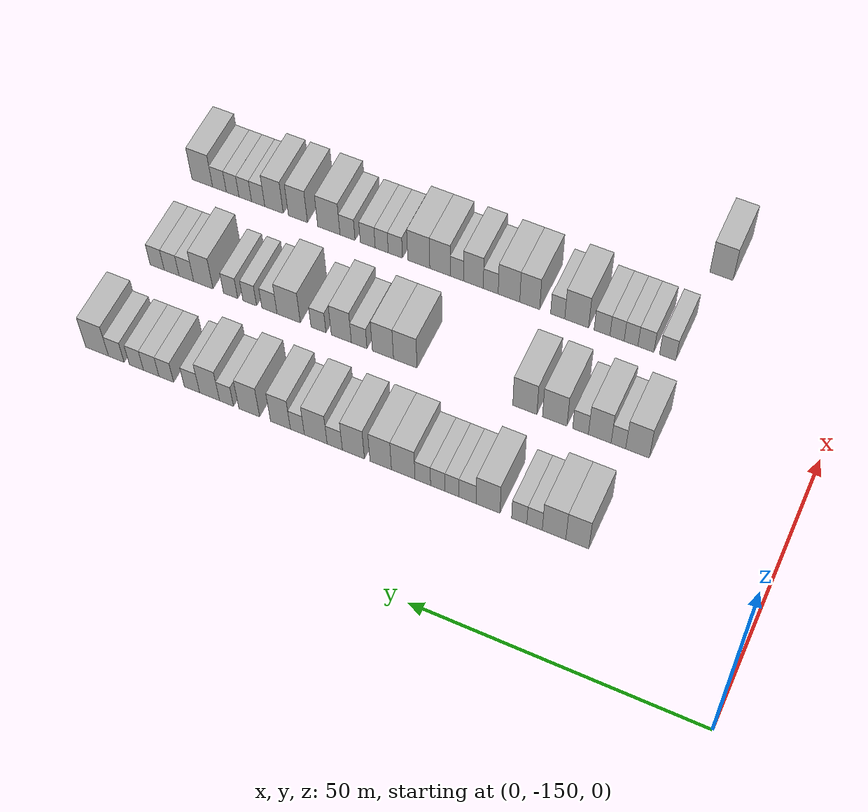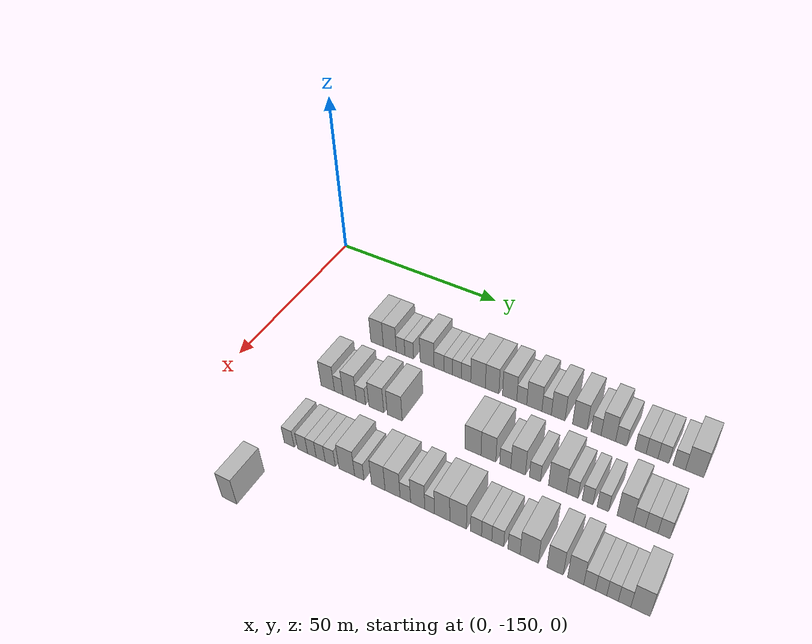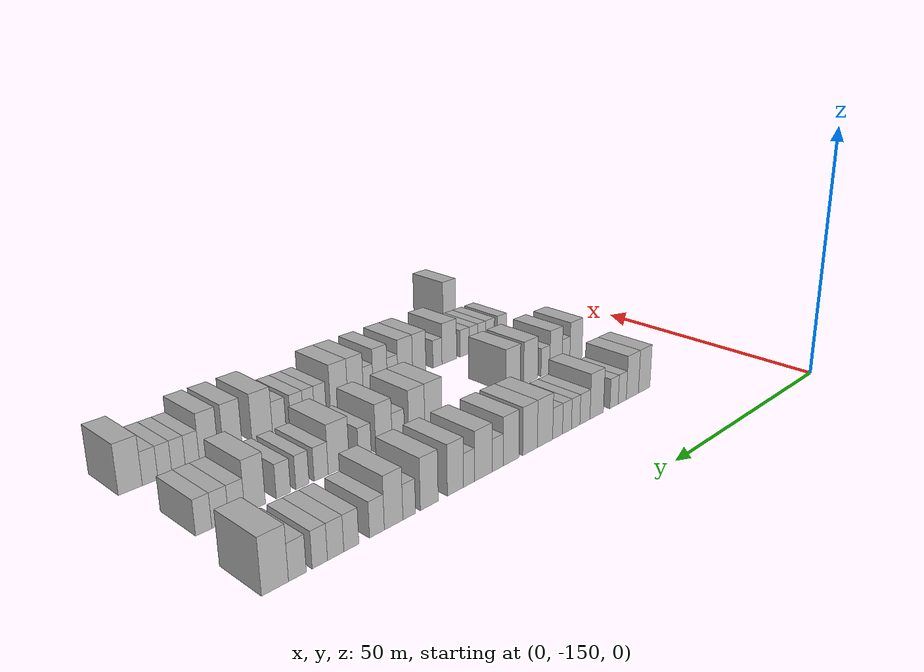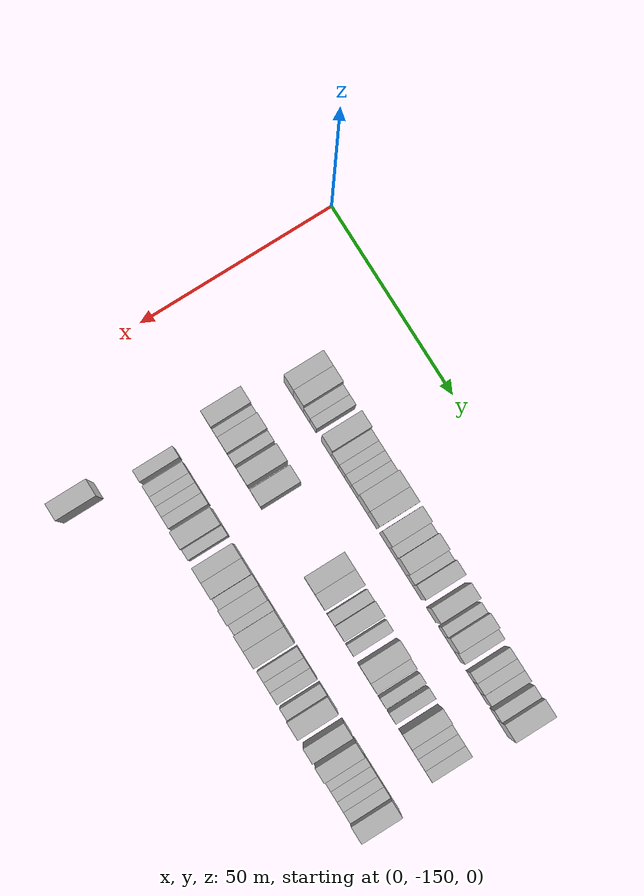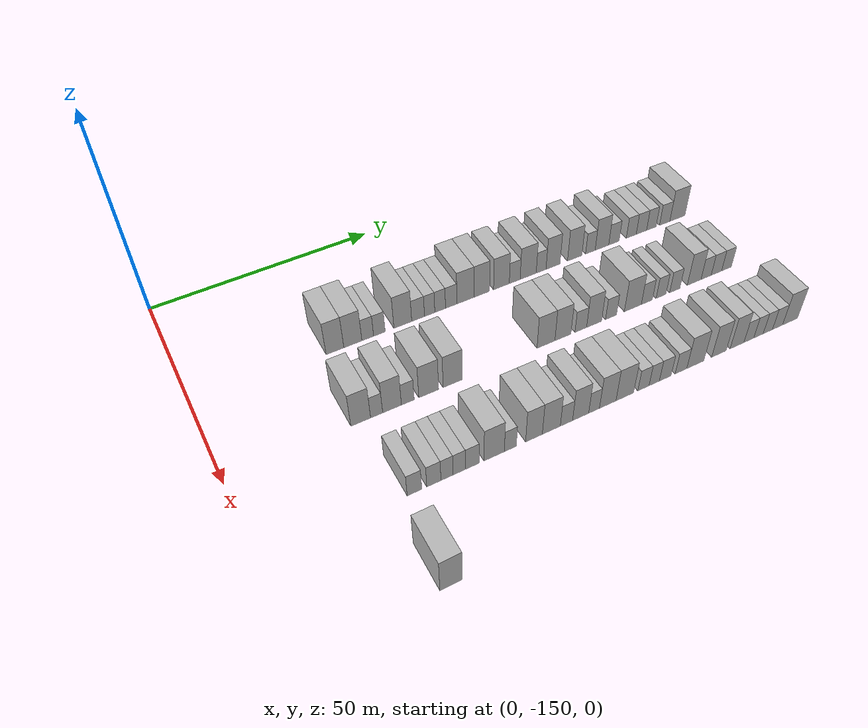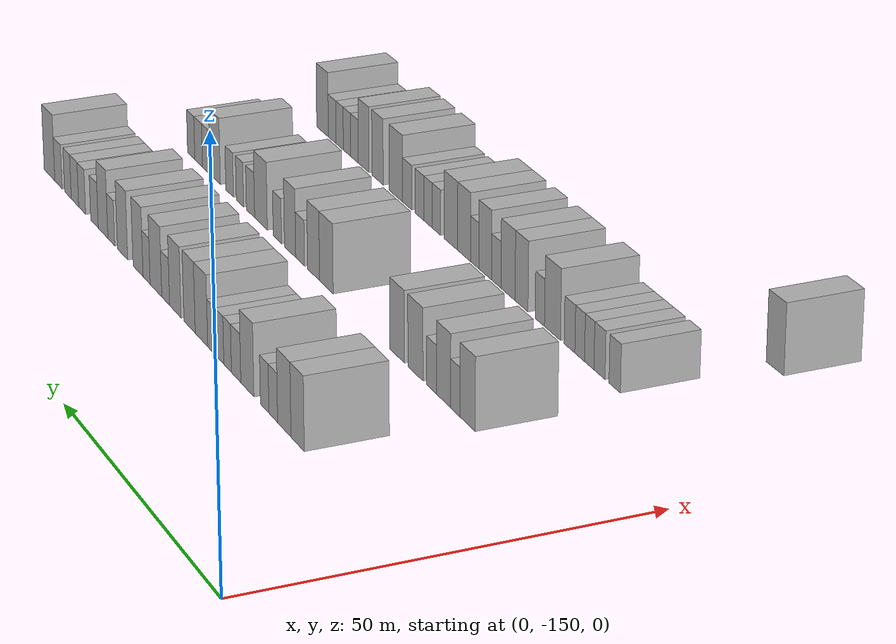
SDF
<sdf version="1.6">
 <world name="default">
  <model name="building_59">
   <static>1</static>
   <pose>25.0000 -119.9906 0 0.000000 0.000000 0.000000</pose>
   <link name="link">
    <pose>0 0 4.50 0 0 0</pose>
    <collision name="collision"><geometry><box><size>10.0000 3.9151 9.0000</size></box></geometry></collision>
    <visual name="visual">
     <cast_shadows>0</cast_shadows>
     <geometry><box><size>10.0000 3.9151 9.0000</size></box></geometry>
     <material>
      <script>
       <uri>model://HANNAS_wall/materials/scripts</uri>
       <uri>model://HANNAS_wall/materials/textures</uri>
       <name>vrc/HANNAS_wall</name>
      </script>
     </material>
    </visual>
   </link>
  </model>
  <model name="building_60">
   <static>1</static>
   <pose>25.0000 -116.0222 0 0.000000 0.000000 0.000000</pose>
   <link name="link">
    <pose>0 0 4.50 0 0 0</pose>
    <collision name="collision"><geometry><box><size>10.0000 4.0216 9.0000</size></box></geometry></collision>
    <visual name="visual">
     <cast_shadows>0</cast_shadows>
     <geometry><box><size>10.0000 4.0216 9.0000</size></box></geometry>
     <material>
      <script>
       <uri>model://HANNAS_wall/materials/scripts</uri>
       <uri>model://HANNAS_wall/materials/textures</uri>
       <name>vrc/HANNAS_wall</name>
      </script>
     </material>
    </visual>
   </link>
  </model>
  <model name="building_61">
   <static>1</static>
   <pose>25.0000 -112.6901 0 0.000000 0.000000 0.000000</pose>
   <link name="link">
    <pose>0 0 3.00 0 0 0</pose>
    <collision name="collision"><geometry><box><size>10.0000 2.6426 6.0000</size></box></geometry></collision>
    <visual name="visual">
     <cast_shadows>0</cast_shadows>
     <geometry><box><size>10.0000 2.6426 6.0000</size></box></geometry>
     <material>
      <script>
       <uri>model://HANNAS_wall/materials/scripts</uri>
       <uri>model://HANNAS_wall/materials/textures</uri>
       <name>vrc/HANNAS_wall</name>
      </script>
     </material>
    </visual>
   </link>
  </model>
  <model name="building_62">
   <static>1</static>
   <pose>25.0000 -110.0541 0 0.000000 0.000000 0.000000</pose>
   <link name="link">
    <pose>0 0 3.00 0 0 0</pose>
    <collision name="collision"><geometry><box><size>10.0000 2.6295 6.0000</size></box></geometry></collision>
    <visual name="visual">
     <cast_shadows>0</cast_shadows>
     <geometry><box><size>10.0000 2.6295 6.0000</size></box></geometry>
     <material>
      <script>
       <uri>model://HANNAS_wall/materials/scripts</uri>
       <uri>model://HANNAS_wall/materials/textures</uri>
       <name>vrc/HANNAS_wall</name>
      </script>
     </material>
    </visual>
   </link>
  </model>
  <model name="building_63">
   <static>1</static>
   <pose>25.0000 -104.6762 0 0.000000 0.000000 0.000000</pose>
   <link name="link">
    <pose>0 0 4.50 0 0 0</pose>
    <collision name="collision"><geometry><box><size>10.0000 4.1262 9.0000</size></box></geometry></collision>
    <visual name="visual">
     <cast_shadows>0</cast_shadows>
     <geometry><box><size>10.0000 4.1262 9.0000</size></box></geometry>
     <material>
      <script>
       <uri>model://HANNAS_wall/materials/scripts</uri>
       <uri>model://HANNAS_wall/materials/textures</uri>
       <name>vrc/HANNAS_wall</name>
      </script>
     </material>
    </visual>
   </link>
  </model>
  <model name="building_64">
   <static>1</static>
   <pose>25.0000 -101.1156 0 0.000000 0.000000 0.000000</pose>
   <link name="link">
    <pose>0 0 3.00 0 0 0</pose>
    <collision name="collision"><geometry><box><size>10.0000 2.9951 6.0000</size></box></geometry></collision>
    <visual name="visual">
     <cast_shadows>0</cast_shadows>
     <geometry><box><size>10.0000 2.9951 6.0000</size></box></geometry>
     <material>
      <script>
       <uri>model://HANNAS_wall/materials/scripts</uri>
       <uri>model://HANNAS_wall/materials/textures</uri>
       <name>vrc/HANNAS_wall</name>
      </script>
     </material>
    </visual>
   </link>
  </model>
  <model name="building_65">
   <static>1</static>
   <pose>25.0000 -98.3955 0 0.000000 0.000000 0.000000</pose>
   <link name="link">
    <pose>0 0 3.00 0 0 0</pose>
    <collision name="collision"><geometry><box><size>10.0000 2.4451 6.0000</size></box></geometry></collision>
    <visual name="visual">
     <cast_shadows>0</cast_shadows>
     <geometry><box><size>10.0000 2.4451 6.0000</size></box></geometry>
     <material>
      <script>
       <uri>model://HANNAS_wall/materials/scripts</uri>
       <uri>model://HANNAS_wall/materials/textures</uri>
       <name>vrc/HANNAS_wall</name>
      </script>
     </material>
    </visual>
   </link>
  </model>
  <model name="building_66">
   <static>1</static>
   <pose>25.0000 -95.9010 0 0.000000 0.000000 0.000000</pose>
   <link name="link">
    <pose>0 0 3.00 0 0 0</pose>
    <collision name="collision"><geometry><box><size>10.0000 2.5439 6.0000</size></box></geometry></collision>
    <visual name="visual">
     <cast_shadows>0</cast_shadows>
     <geometry><box><size>10.0000 2.5439 6.0000</size></box></geometry>
     <material>
      <script>
       <uri>model://HANNAS_wall/materials/scripts</uri>
       <uri>model://HANNAS_wall/materials/textures</uri>
       <name>vrc/HANNAS_wall</name>
      </script>
     </material>
    </visual>
   </link>
  </model>
  <model name="building_67">
   <static>1</static>
   <pose>25.0000 -93.2577 0 0.000000 0.000000 0.000000</pose>
   <link name="link">
    <pose>0 0 3.00 0 0 0</pose>
    <collision name="collision"><geometry><box><size>10.0000 2.7427 6.0000</size></box></geometry></collision>
    <visual name="visual">
     <cast_shadows>0</cast_shadows>
     <geometry><box><size>10.0000 2.7427 6.0000</size></box></geometry>
     <material>
      <script>
       <uri>model://HANNAS_wall/materials/scripts</uri>
       <uri>model://HANNAS_wall/materials/textures</uri>
       <name>vrc/HANNAS_wall</name>
      </script>
     </material>
    </visual>
   </link>
  </model>
  <model name="building_68">
   <static>1</static>
   <pose>25.0000 -89.7985 0 0.000000 0.000000 0.000000</pose>
   <link name="link">
    <pose>0 0 4.50 0 0 0</pose>
    <collision name="collision"><geometry><box><size>10.0000 4.1758 9.0000</size></box></geometry></collision>
    <visual name="visual">
     <cast_shadows>0</cast_shadows>
     <geometry><box><size>10.0000 4.1758 9.0000</size></box></geometry>
     <material>
      <script>
       <uri>model://HANNAS_wall/materials/scripts</uri>
       <uri>model://HANNAS_wall/materials/textures</uri>
       <name>vrc/HANNAS_wall</name>
      </script>
     </material>
    </visual>
   </link>
  </model>
  <model name="building_69">
   <static>1</static>
   <pose>25.0000 -85.8017 0 0.000000 0.000000 0.000000</pose>
   <link name="link">
    <pose>0 0 4.50 0 0 0</pose>
    <collision name="collision"><geometry><box><size>10.0000 3.8178 9.0000</size></box></geometry></collision>
    <visual name="visual">
     <cast_shadows>0</cast_shadows>
     <geometry><box><size>10.0000 3.8178 9.0000</size></box></geometry>
     <material>
      <script>
       <uri>model://HANNAS_wall/materials/scripts</uri>
       <uri>model://HANNAS_wall/materials/textures</uri>
       <name>vrc/HANNAS_wall</name>
      </script>
     </material>
    </visual>
   </link>
  </model>
  <model name="building_70">
   <static>1</static>
   <pose>25.0000 -80.9152 0 0.000000 0.000000 0.000000</pose>
   <link name="link">
    <pose>0 0 4.50 0 0 0</pose>
    <collision name="collision"><geometry><box><size>10.0000 3.9553 9.0000</size></box></geometry></collision>
    <visual name="visual">
     <cast_shadows>0</cast_shadows>
     <geometry><box><size>10.0000 3.9553 9.0000</size></box></geometry>
     <material>
      <script>
       <uri>model://HANNAS_wall/materials/scripts</uri>
       <uri>model://HANNAS_wall/materials/textures</uri>
       <name>vrc/HANNAS_wall</name>
      </script>
     </material>
    </visual>
   </link>
  </model>
  <model name="building_71">
   <static>1</static>
   <pose>25.0000 -77.5661 0 0.000000 0.000000 0.000000</pose>
   <link name="link">
    <pose>0 0 3.00 0 0 0</pose>
    <collision name="collision"><geometry><box><size>10.0000 2.7429 6.0000</size></box></geometry></collision>
    <visual name="visual">
     <cast_shadows>0</cast_shadows>
     <geometry><box><size>10.0000 2.7429 6.0000</size></box></geometry>
     <material>
      <script>
       <uri>model://HANNAS_wall/materials/scripts</uri>
       <uri>model://HANNAS_wall/materials/textures</uri>
       <name>vrc/HANNAS_wall</name>
      </script>
     </material>
    </visual>
   </link>
  </model>
  <model name="building_72">
   <static>1</static>
   <pose>25.0000 -74.1338 0 0.000000 0.000000 0.000000</pose>
   <link name="link">
    <pose>0 0 4.50 0 0 0</pose>
    <collision name="collision"><geometry><box><size>10.0000 4.1218 9.0000</size></box></geometry></collision>
    <visual name="visual">
     <cast_shadows>0</cast_shadows>
     <geometry><box><size>10.0000 4.1218 9.0000</size></box></geometry>
     <material>
      <script>
       <uri>model://HANNAS_wall/materials/scripts</uri>
       <uri>model://HANNAS_wall/materials/textures</uri>
       <name>vrc/HANNAS_wall</name>
      </script>
     </material>
    </visual>
   </link>
  </model>
  <model name="building_73">
   <static>1</static>
   <pose>25.0000 -70.8016 0 0.000000 0.000000 0.000000</pose>
   <link name="link">
    <pose>0 0 3.00 0 0 0</pose>
    <collision name="collision"><geometry><box><size>10.0000 2.5425 6.0000</size></box></geometry></collision>
    <visual name="visual">
     <cast_shadows>0</cast_shadows>
     <geometry><box><size>10.0000 2.5425 6.0000</size></box></geometry>
     <material>
      <script>
       <uri>model://HANNAS_wall/materials/scripts</uri>
       <uri>model://HANNAS_wall/materials/textures</uri>
       <name>vrc/HANNAS_wall</name>
      </script>
     </material>
    </visual>
   </link>
  </model>
  <model name="building_74">
   <static>1</static>
   <pose>25.0000 -67.7146 0 0.000000 0.000000 0.000000</pose>
   <link name="link">
    <pose>0 0 4.50 0 0 0</pose>
    <collision name="collision"><geometry><box><size>10.0000 3.6316 9.0000</size></box></geometry></collision>
    <visual name="visual">
     <cast_shadows>0</cast_shadows>
     <geometry><box><size>10.0000 3.6316 9.0000</size></box></geometry>
     <material>
      <script>
       <uri>model://HANNAS_wall/materials/scripts</uri>
       <uri>model://HANNAS_wall/materials/textures</uri>
       <name>vrc/HANNAS_wall</name>
      </script>
     </material>
    </visual>
   </link>
  </model>
  <model name="building_75">
   <static>1</static>
   <pose>25.0000 -61.9915 0 0.000000 0.000000 0.000000</pose>
   <link name="link">
    <pose>0 0 4.50 0 0 0</pose>
    <collision name="collision"><geometry><box><size>10.0000 3.8147 9.0000</size></box></geometry></collision>
    <visual name="visual">
     <cast_shadows>0</cast_shadows>
     <geometry><box><size>10.0000 3.8147 9.0000</size></box></geometry>
     <material>
      <script>
       <uri>model://HANNAS_wall/materials/scripts</uri>
       <uri>model://HANNAS_wall/materials/textures</uri>
       <name>vrc/HANNAS_wall</name>
      </script>
     </material>
    </visual>
   </link>
  </model>
  <model name="building_76">
   <static>1</static>
   <pose>25.0000 -57.7889 0 0.000000 0.000000 0.000000</pose>
   <link name="link">
    <pose>0 0 3.00 0 0 0</pose>
    <collision name="collision"><geometry><box><size>10.0000 2.5904 6.0000</size></box></geometry></collision>
    <visual name="visual">
     <cast_shadows>0</cast_shadows>
     <geometry><box><size>10.0000 2.5904 6.0000</size></box></geometry>
     <material>
      <script>
       <uri>model://HANNAS_wall/materials/scripts</uri>
       <uri>model://HANNAS_wall/materials/textures</uri>
       <name>vrc/HANNAS_wall</name>
      </script>
     </material>
    </visual>
   </link>
  </model>
  <model name="building_77">
   <static>1</static>
   <pose>25.0000 -54.6453 0 0.000000 0.000000 0.000000</pose>
   <link name="link">
    <pose>0 0 4.50 0 0 0</pose>
    <collision name="collision"><geometry><box><size>10.0000 3.6968 9.0000</size></box></geometry></collision>
    <visual name="visual">
     <cast_shadows>0</cast_shadows>
     <geometry><box><size>10.0000 3.6968 9.0000</size></box></geometry>
     <material>
      <script>
       <uri>model://HANNAS_wall/materials/scripts</uri>
       <uri>model://HANNAS_wall/materials/textures</uri>
       <name>vrc/HANNAS_wall</name>
      </script>
     </material>
    </visual>
   </link>
  </model>
  <model name="building_78">
   <static>1</static>
   <pose>25.0000 -51.3597 0 0.000000 0.000000 0.000000</pose>
   <link name="link">
    <pose>0 0 3.00 0 0 0</pose>
    <collision name="collision"><geometry><box><size>10.0000 2.8746 6.0000</size></box></geometry></collision>
    <visual name="visual">
     <cast_shadows>0</cast_shadows>
     <geometry><box><size>10.0000 2.8746 6.0000</size></box></geometry>
     <material>
      <script>
       <uri>model://HANNAS_wall/materials/scripts</uri>
       <uri>model://HANNAS_wall/materials/textures</uri>
       <name>vrc/HANNAS_wall</name>
      </script>
     </material>
    </visual>
   </link>
  </model>
  <model name="building_79">
   <static>1</static>
   <pose>25.0000 -46.5425 0 0.000000 0.000000 0.000000</pose>
   <link name="link">
    <pose>0 0 3.00 0 0 0</pose>
    <collision name="collision"><geometry><box><size>10.0000 2.7597 6.0000</size></box></geometry></collision>
    <visual name="visual">
     <cast_shadows>0</cast_shadows>
     <geometry><box><size>10.0000 2.7597 6.0000</size></box></geometry>
     <material>
      <script>
       <uri>model://HANNAS_wall/materials/scripts</uri>
       <uri>model://HANNAS_wall/materials/textures</uri>
       <name>vrc/HANNAS_wall</name>
      </script>
     </material>
    </visual>
   </link>
  </model>
  <model name="building_80">
   <static>1</static>
   <pose>25.0000 -43.7028 0 0.000000 0.000000 0.000000</pose>
   <link name="link">
    <pose>0 0 3.00 0 0 0</pose>
    <collision name="collision"><geometry><box><size>10.0000 2.9198 6.0000</size></box></geometry></collision>
    <visual name="visual">
     <cast_shadows>0</cast_shadows>
     <geometry><box><size>10.0000 2.9198 6.0000</size></box></geometry>
     <material>
      <script>
       <uri>model://HANNAS_wall/materials/scripts</uri>
       <uri>model://HANNAS_wall/materials/textures</uri>
       <name>vrc/HANNAS_wall</name>
      </script>
     </material>
    </visual>
   </link>
  </model>
  <model name="building_81">
   <static>1</static>
   <pose>25.0000 -40.9057 0 0.000000 0.000000 0.000000</pose>
   <link name="link">
    <pose>0 0 3.00 0 0 0</pose>
    <collision name="collision"><geometry><box><size>10.0000 2.6742 6.0000</size></box></geometry></collision>
    <visual name="visual">
     <cast_shadows>0</cast_shadows>
     <geometry><box><size>10.0000 2.6742 6.0000</size></box></geometry>
     <material>
      <script>
       <uri>model://HANNAS_wall/materials/scripts</uri>
       <uri>model://HANNAS_wall/materials/textures</uri>
       <name>vrc/HANNAS_wall</name>
      </script>
     </material>
    </visual>
   </link>
  </model>
  <model name="building_82">
   <static>1</static>
   <pose>25.0000 -37.0797 0 0.000000 0.000000 0.000000</pose>
   <link name="link">
    <pose>0 0 3.00 0 0 0</pose>
    <collision name="collision"><geometry><box><size>10.0000 2.9779 6.0000</size></box></geometry></collision>
    <visual name="visual">
     <cast_shadows>0</cast_shadows>
     <geometry><box><size>10.0000 2.9779 6.0000</size></box></geometry>
     <material>
      <script>
       <uri>model://HANNAS_wall/materials/scripts</uri>
       <uri>model://HANNAS_wall/materials/textures</uri>
       <name>vrc/HANNAS_wall</name>
      </script>
     </material>
    </visual>
   </link>
  </model>
  <model name="building_83">
   <static>1</static>
   <pose>25.0000 -33.4081 0 0.000000 0.000000 0.000000</pose>
   <link name="link">
    <pose>0 0 4.50 0 0 0</pose>
    <collision name="collision"><geometry><box><size>10.0000 4.3652 9.0000</size></box></geometry></collision>
    <visual name="visual">
     <cast_shadows>0</cast_shadows>
     <geometry><box><size>10.0000 4.3652 9.0000</size></box></geometry>
     <material>
      <script>
       <uri>model://HANNAS_wall/materials/scripts</uri>
       <uri>model://HANNAS_wall/materials/textures</uri>
       <name>vrc/HANNAS_wall</name>
      </script>
     </material>
    </visual>
   </link>
  </model>
  <model name="building_235">
   <static>1</static>
   <pose>44.0000 -122.6743 0 0.000000 0.000000 0.000000</pose>
   <link name="link">
    <pose>0 0 4.50 0 0 0</pose>
    <collision name="collision"><geometry><box><size>10.0000 4.1138 9.0000</size></box></geometry></collision>
    <visual name="visual">
     <cast_shadows>0</cast_shadows>
     <geometry><box><size>10.0000 4.1138 9.0000</size></box></geometry>
     <material>
      <script>
       <uri>model://HANNAS_wall/materials/scripts</uri>
       <uri>model://HANNAS_wall/materials/textures</uri>
       <name>vrc/HANNAS_wall</name>
      </script>
     </material>
    </visual>
   </link>
  </model>
  <model name="building_236">
   <static>1</static>
   <pose>44.0000 -119.3492 0 0.000000 0.000000 0.000000</pose>
   <link name="link">
    <pose>0 0 3.00 0 0 0</pose>
    <collision name="collision"><geometry><box><size>10.0000 2.5364 6.0000</size></box></geometry></collision>
    <visual name="visual">
     <cast_shadows>0</cast_shadows>
     <geometry><box><size>10.0000 2.5364 6.0000</size></box></geometry>
     <material>
      <script>
       <uri>model://HANNAS_wall/materials/scripts</uri>
       <uri>model://HANNAS_wall/materials/textures</uri>
       <name>vrc/HANNAS_wall</name>
      </script>
     </material>
    </visual>
   </link>
  </model>
  <model name="building_237">
   <static>1</static>
   <pose>44.0000 -116.0905 0 0.000000 0.000000 0.000000</pose>
   <link name="link">
    <pose>0 0 4.50 0 0 0</pose>
    <collision name="collision"><geometry><box><size>10.0000 3.9810 9.0000</size></box></geometry></collision>
    <visual name="visual">
     <cast_shadows>0</cast_shadows>
     <geometry><box><size>10.0000 3.9810 9.0000</size></box></geometry>
     <material>
      <script>
       <uri>model://HANNAS_wall/materials/scripts</uri>
       <uri>model://HANNAS_wall/materials/textures</uri>
       <name>vrc/HANNAS_wall</name>
      </script>
     </material>
    </visual>
   </link>
  </model>
  <model name="building_238">
   <static>1</static>
   <pose>44.0000 -112.7217 0 0.000000 0.000000 0.000000</pose>
   <link name="link">
    <pose>0 0 3.00 0 0 0</pose>
    <collision name="collision"><geometry><box><size>10.0000 2.7566 6.0000</size></box></geometry></collision>
    <visual name="visual">
     <cast_shadows>0</cast_shadows>
     <geometry><box><size>10.0000 2.7566 6.0000</size></box></geometry>
     <material>
      <script>
       <uri>model://HANNAS_wall/materials/scripts</uri>
       <uri>model://HANNAS_wall/materials/textures</uri>
       <name>vrc/HANNAS_wall</name>
      </script>
     </material>
    </visual>
   </link>
  </model>
  <model name="building_239">
   <static>1</static>
   <pose>44.0000 -108.1773 0 0.000000 0.000000 0.000000</pose>
   <link name="link">
    <pose>0 0 4.50 0 0 0</pose>
    <collision name="collision"><geometry><box><size>10.0000 4.3321 9.0000</size></box></geometry></collision>
    <visual name="visual">
     <cast_shadows>0</cast_shadows>
     <geometry><box><size>10.0000 4.3321 9.0000</size></box></geometry>
     <material>
      <script>
       <uri>model://HANNAS_wall/materials/scripts</uri>
       <uri>model://HANNAS_wall/materials/textures</uri>
       <name>vrc/HANNAS_wall</name>
      </script>
     </material>
    </visual>
   </link>
  </model>
  <model name="building_240">
   <static>1</static>
   <pose>44.0000 -102.8715 0 0.000000 0.000000 0.000000</pose>
   <link name="link">
    <pose>0 0 4.50 0 0 0</pose>
    <collision name="collision"><geometry><box><size>10.0000 4.2794 9.0000</size></box></geometry></collision>
    <visual name="visual">
     <cast_shadows>0</cast_shadows>
     <geometry><box><size>10.0000 4.2794 9.0000</size></box></geometry>
     <material>
      <script>
       <uri>model://HANNAS_wall/materials/scripts</uri>
       <uri>model://HANNAS_wall/materials/textures</uri>
       <name>vrc/HANNAS_wall</name>
      </script>
     </material>
    </visual>
   </link>
  </model>
  <model name="building_241">
   <static>1</static>
   <pose>44.0000 -81.2665 0 0.000000 0.000000 0.000000</pose>
   <link name="link">
    <pose>0 0 4.50 0 0 0</pose>
    <collision name="collision"><geometry><box><size>10.0000 4.3103 9.0000</size></box></geometry></collision>
    <visual name="visual">
     <cast_shadows>0</cast_shadows>
     <geometry><box><size>10.0000 4.3103 9.0000</size></box></geometry>
     <material>
      <script>
       <uri>model://HANNAS_wall/materials/scripts</uri>
       <uri>model://HANNAS_wall/materials/textures</uri>
       <name>vrc/HANNAS_wall</name>
      </script>
     </material>
    </visual>
   </link>
  </model>
  <model name="building_242">
   <static>1</static>
   <pose>44.0000 -77.1617 0 0.000000 0.000000 0.000000</pose>
   <link name="link">
    <pose>0 0 4.50 0 0 0</pose>
    <collision name="collision"><geometry><box><size>10.0000 3.8993 9.0000</size></box></geometry></collision>
    <visual name="visual">
     <cast_shadows>0</cast_shadows>
     <geometry><box><size>10.0000 3.8993 9.0000</size></box></geometry>
     <material>
      <script>
       <uri>model://HANNAS_wall/materials/scripts</uri>
       <uri>model://HANNAS_wall/materials/textures</uri>
       <name>vrc/HANNAS_wall</name>
      </script>
     </material>
    </visual>
   </link>
  </model>
  <model name="building_243">
   <static>1</static>
   <pose>44.0000 -72.7648 0 0.000000 0.000000 0.000000</pose>
   <link name="link">
    <pose>0 0 3.00 0 0 0</pose>
    <collision name="collision"><geometry><box><size>10.0000 2.8944 6.0000</size></box></geometry></collision>
    <visual name="visual">
     <cast_shadows>0</cast_shadows>
     <geometry><box><size>10.0000 2.8944 6.0000</size></box></geometry>
     <material>
      <script>
       <uri>model://HANNAS_wall/materials/scripts</uri>
       <uri>model://HANNAS_wall/materials/textures</uri>
       <name>vrc/HANNAS_wall</name>
      </script>
     </material>
    </visual>
   </link>
  </model>
  <model name="building_244">
   <static>1</static>
   <pose>44.0000 -69.4491 0 0.000000 0.000000 0.000000</pose>
   <link name="link">
    <pose>0 0 4.50 0 0 0</pose>
    <collision name="collision"><geometry><box><size>10.0000 3.7369 9.0000</size></box></geometry></collision>
    <visual name="visual">
     <cast_shadows>0</cast_shadows>
     <geometry><box><size>10.0000 3.7369 9.0000</size></box></geometry>
     <material>
      <script>
       <uri>model://HANNAS_wall/materials/scripts</uri>
       <uri>model://HANNAS_wall/materials/textures</uri>
       <name>vrc/HANNAS_wall</name>
      </script>
     </material>
    </visual>
   </link>
  </model>
  <model name="building_245">
   <static>1</static>
   <pose>44.0000 -65.1760 0 0.000000 0.000000 0.000000</pose>
   <link name="link">
    <pose>0 0 3.00 0 0 0</pose>
    <collision name="collision"><geometry><box><size>10.0000 2.8092 6.0000</size></box></geometry></collision>
    <visual name="visual">
     <cast_shadows>0</cast_shadows>
     <geometry><box><size>10.0000 2.8092 6.0000</size></box></geometry>
     <material>
      <script>
       <uri>model://HANNAS_wall/materials/scripts</uri>
       <uri>model://HANNAS_wall/materials/textures</uri>
       <name>vrc/HANNAS_wall</name>
      </script>
     </material>
    </visual>
   </link>
  </model>
  <model name="building_246">
   <static>1</static>
   <pose>44.0000 -59.5699 0 0.000000 0.000000 0.000000</pose>
   <link name="link">
    <pose>0 0 4.50 0 0 0</pose>
    <collision name="collision"><geometry><box><size>10.0000 4.4029 9.0000</size></box></geometry></collision>
    <visual name="visual">
     <cast_shadows>0</cast_shadows>
     <geometry><box><size>10.0000 4.4029 9.0000</size></box></geometry>
     <material>
      <script>
       <uri>model://HANNAS_wall/materials/scripts</uri>
       <uri>model://HANNAS_wall/materials/textures</uri>
       <name>vrc/HANNAS_wall</name>
      </script>
     </material>
    </visual>
   </link>
  </model>
  <model name="building_247">
   <static>1</static>
   <pose>44.0000 -55.9267 0 0.000000 0.000000 0.000000</pose>
   <link name="link">
    <pose>0 0 3.00 0 0 0</pose>
    <collision name="collision"><geometry><box><size>10.0000 2.8835 6.0000</size></box></geometry></collision>
    <visual name="visual">
     <cast_shadows>0</cast_shadows>
     <geometry><box><size>10.0000 2.8835 6.0000</size></box></geometry>
     <material>
      <script>
       <uri>model://HANNAS_wall/materials/scripts</uri>
       <uri>model://HANNAS_wall/materials/textures</uri>
       <name>vrc/HANNAS_wall</name>
      </script>
     </material>
    </visual>
   </link>
  </model>
  <model name="building_248">
   <static>1</static>
   <pose>44.0000 -52.1821 0 0.000000 0.000000 0.000000</pose>
   <link name="link">
    <pose>0 0 3.00 0 0 0</pose>
    <collision name="collision"><geometry><box><size>10.0000 2.6058 6.0000</size></box></geometry></collision>
    <visual name="visual">
     <cast_shadows>0</cast_shadows>
     <geometry><box><size>10.0000 2.6058 6.0000</size></box></geometry>
     <material>
      <script>
       <uri>model://HANNAS_wall/materials/scripts</uri>
       <uri>model://HANNAS_wall/materials/textures</uri>
       <name>vrc/HANNAS_wall</name>
      </script>
     </material>
    </visual>
   </link>
  </model>
  <model name="building_249">
   <static>1</static>
   <pose>44.0000 -48.5098 0 0.000000 0.000000 0.000000</pose>
   <link name="link">
    <pose>0 0 3.00 0 0 0</pose>
    <collision name="collision"><geometry><box><size>10.0000 2.7388 6.0000</size></box></geometry></collision>
    <visual name="visual">
     <cast_shadows>0</cast_shadows>
     <geometry><box><size>10.0000 2.7388 6.0000</size></box></geometry>
     <material>
      <script>
       <uri>model://HANNAS_wall/materials/scripts</uri>
       <uri>model://HANNAS_wall/materials/textures</uri>
       <name>vrc/HANNAS_wall</name>
      </script>
     </material>
    </visual>
   </link>
  </model>
  <model name="building_250">
   <static>1</static>
   <pose>44.0000 -43.2722 0 0.000000 0.000000 0.000000</pose>
   <link name="link">
    <pose>0 0 4.50 0 0 0</pose>
    <collision name="collision"><geometry><box><size>10.0000 3.7363 9.0000</size></box></geometry></collision>
    <visual name="visual">
     <cast_shadows>0</cast_shadows>
     <geometry><box><size>10.0000 3.7363 9.0000</size></box></geometry>
     <material>
      <script>
       <uri>model://HANNAS_wall/materials/scripts</uri>
       <uri>model://HANNAS_wall/materials/textures</uri>
       <name>vrc/HANNAS_wall</name>
      </script>
     </material>
    </visual>
   </link>
  </model>
  <model name="building_251">
   <static>1</static>
   <pose>44.0000 -39.9875 0 0.000000 0.000000 0.000000</pose>
   <link name="link">
    <pose>0 0 3.00 0 0 0</pose>
    <collision name="collision"><geometry><box><size>10.0000 2.8331 6.0000</size></box></geometry></collision>
    <visual name="visual">
     <cast_shadows>0</cast_shadows>
     <geometry><box><size>10.0000 2.8331 6.0000</size></box></geometry>
     <material>
      <script>
       <uri>model://HANNAS_wall/materials/scripts</uri>
       <uri>model://HANNAS_wall/materials/textures</uri>
       <name>vrc/HANNAS_wall</name>
      </script>
     </material>
    </visual>
   </link>
  </model>
  <model name="building_252">
   <static>1</static>
   <pose>44.0000 -37.1230 0 0.000000 0.000000 0.000000</pose>
   <link name="link">
    <pose>0 0 3.00 0 0 0</pose>
    <collision name="collision"><geometry><box><size>10.0000 2.8959 6.0000</size></box></geometry></collision>
    <visual name="visual">
     <cast_shadows>0</cast_shadows>
     <geometry><box><size>10.0000 2.8959 6.0000</size></box></geometry>
     <material>
      <script>
       <uri>model://HANNAS_wall/materials/scripts</uri>
       <uri>model://HANNAS_wall/materials/textures</uri>
       <name>vrc/HANNAS_wall</name>
      </script>
     </material>
    </visual>
   </link>
  </model>
  <model name="building_253">
   <static>1</static>
   <pose>44.0000 -34.3102 0 0.000000 0.000000 0.000000</pose>
   <link name="link">
    <pose>0 0 3.00 0 0 0</pose>
    <collision name="collision"><geometry><box><size>10.0000 2.7297 6.0000</size></box></geometry></collision>
    <visual name="visual">
     <cast_shadows>0</cast_shadows>
     <geometry><box><size>10.0000 2.7297 6.0000</size></box></geometry>
     <material>
      <script>
       <uri>model://HANNAS_wall/materials/scripts</uri>
       <uri>model://HANNAS_wall/materials/textures</uri>
       <name>vrc/HANNAS_wall</name>
      </script>
     </material>
    </visual>
   </link>
  </model>
  <model name="building_410">
   <static>1</static>
   <pose>63.0000 -120.6022 0 0.000000 0.000000 0.000000</pose>
   <link name="link">
    <pose>0 0 3.00 0 0 0</pose>
    <collision name="collision"><geometry><box><size>10.0000 2.9149 6.0000</size></box></geometry></collision>
    <visual name="visual">
     <cast_shadows>0</cast_shadows>
     <geometry><box><size>10.0000 2.9149 6.0000</size></box></geometry>
     <material>
      <script>
       <uri>model://HANNAS_wall/materials/scripts</uri>
       <uri>model://HANNAS_wall/materials/textures</uri>
       <name>vrc/HANNAS_wall</name>
      </script>
     </material>
    </visual>
   </link>
  </model>
  <model name="building_411">
   <static>1</static>
   <pose>63.0000 -116.7127 0 0.000000 0.000000 0.000000</pose>
   <link name="link">
    <pose>0 0 3.00 0 0 0</pose>
    <collision name="collision"><geometry><box><size>10.0000 2.8641 6.0000</size></box></geometry></collision>
    <visual name="visual">
     <cast_shadows>0</cast_shadows>
     <geometry><box><size>10.0000 2.8641 6.0000</size></box></geometry>
     <material>
      <script>
       <uri>model://HANNAS_wall/materials/scripts</uri>
       <uri>model://HANNAS_wall/materials/textures</uri>
       <name>vrc/HANNAS_wall</name>
      </script>
     </material>
    </visual>
   </link>
  </model>
  <model name="building_412">
   <static>1</static>
   <pose>63.0000 -114.0427 0 0.000000 0.000000 0.000000</pose>
   <link name="link">
    <pose>0 0 3.00 0 0 0</pose>
    <collision name="collision"><geometry><box><size>10.0000 2.4758 6.0000</size></box></geometry></collision>
    <visual name="visual">
     <cast_shadows>0</cast_shadows>
     <geometry><box><size>10.0000 2.4758 6.0000</size></box></geometry>
     <material>
      <script>
       <uri>model://HANNAS_wall/materials/scripts</uri>
       <uri>model://HANNAS_wall/materials/textures</uri>
       <name>vrc/HANNAS_wall</name>
      </script>
     </material>
    </visual>
   </link>
  </model>
  <model name="building_413">
   <static>1</static>
   <pose>63.0000 -111.5319 0 0.000000 0.000000 0.000000</pose>
   <link name="link">
    <pose>0 0 3.00 0 0 0</pose>
    <collision name="collision"><geometry><box><size>10.0000 2.5457 6.0000</size></box></geometry></collision>
    <visual name="visual">
     <cast_shadows>0</cast_shadows>
     <geometry><box><size>10.0000 2.5457 6.0000</size></box></geometry>
     <material>
      <script>
       <uri>model://HANNAS_wall/materials/scripts</uri>
       <uri>model://HANNAS_wall/materials/textures</uri>
       <name>vrc/HANNAS_wall</name>
      </script>
     </material>
    </visual>
   </link>
  </model>
  <model name="building_414">
   <static>1</static>
   <pose>63.0000 -108.8237 0 0.000000 0.000000 0.000000</pose>
   <link name="link">
    <pose>0 0 3.00 0 0 0</pose>
    <collision name="collision"><geometry><box><size>10.0000 2.8706 6.0000</size></box></geometry></collision>
    <visual name="visual">
     <cast_shadows>0</cast_shadows>
     <geometry><box><size>10.0000 2.8706 6.0000</size></box></geometry>
     <material>
      <script>
       <uri>model://HANNAS_wall/materials/scripts</uri>
       <uri>model://HANNAS_wall/materials/textures</uri>
       <name>vrc/HANNAS_wall</name>
      </script>
     </material>
    </visual>
   </link>
  </model>
  <model name="building_415">
   <static>1</static>
   <pose>63.0000 -104.2234 0 0.000000 0.000000 0.000000</pose>
   <link name="link">
    <pose>0 0 4.50 0 0 0</pose>
    <collision name="collision"><geometry><box><size>10.0000 4.3301 9.0000</size></box></geometry></collision>
    <visual name="visual">
     <cast_shadows>0</cast_shadows>
     <geometry><box><size>10.0000 4.3301 9.0000</size></box></geometry>
     <material>
      <script>
       <uri>model://HANNAS_wall/materials/scripts</uri>
       <uri>model://HANNAS_wall/materials/textures</uri>
       <name>vrc/HANNAS_wall</name>
      </script>
     </material>
    </visual>
   </link>
  </model>
  <model name="building_416">
   <static>1</static>
   <pose>63.0000 -100.7630 0 0.000000 0.000000 0.000000</pose>
   <link name="link">
    <pose>0 0 3.00 0 0 0</pose>
    <collision name="collision"><geometry><box><size>10.0000 2.5906 6.0000</size></box></geometry></collision>
    <visual name="visual">
     <cast_shadows>0</cast_shadows>
     <geometry><box><size>10.0000 2.5906 6.0000</size></box></geometry>
     <material>
      <script>
       <uri>model://HANNAS_wall/materials/scripts</uri>
       <uri>model://HANNAS_wall/materials/textures</uri>
       <name>vrc/HANNAS_wall</name>
      </script>
     </material>
    </visual>
   </link>
  </model>
  <model name="building_417">
   <static>1</static>
   <pose>63.0000 -95.6336 0 0.000000 0.000000 0.000000</pose>
   <link name="link">
    <pose>0 0 4.50 0 0 0</pose>
    <collision name="collision"><geometry><box><size>10.0000 3.6683 9.0000</size></box></geometry></collision>
    <visual name="visual">
     <cast_shadows>0</cast_shadows>
     <geometry><box><size>10.0000 3.6683 9.0000</size></box></geometry>
     <material>
      <script>
       <uri>model://HANNAS_wall/materials/scripts</uri>
       <uri>model://HANNAS_wall/materials/textures</uri>
       <name>vrc/HANNAS_wall</name>
      </script>
     </material>
    </visual>
   </link>
  </model>
  <model name="building_418">
   <static>1</static>
   <pose>63.0000 -91.8014 0 0.000000 0.000000 0.000000</pose>
   <link name="link">
    <pose>0 0 4.50 0 0 0</pose>
    <collision name="collision"><geometry><box><size>10.0000 3.9960 9.0000</size></box></geometry></collision>
    <visual name="visual">
     <cast_shadows>0</cast_shadows>
     <geometry><box><size>10.0000 3.9960 9.0000</size></box></geometry>
     <material>
      <script>
       <uri>model://HANNAS_wall/materials/scripts</uri>
       <uri>model://HANNAS_wall/materials/textures</uri>
       <name>vrc/HANNAS_wall</name>
      </script>
     </material>
    </visual>
   </link>
  </model>
  <model name="building_419">
   <static>1</static>
   <pose>63.0000 -88.4241 0 0.000000 0.000000 0.000000</pose>
   <link name="link">
    <pose>0 0 3.00 0 0 0</pose>
    <collision name="collision"><geometry><box><size>10.0000 2.7585 6.0000</size></box></geometry></collision>
    <visual name="visual">
     <cast_shadows>0</cast_shadows>
     <geometry><box><size>10.0000 2.7585 6.0000</size></box></geometry>
     <material>
      <script>
       <uri>model://HANNAS_wall/materials/scripts</uri>
       <uri>model://HANNAS_wall/materials/textures</uri>
       <name>vrc/HANNAS_wall</name>
      </script>
     </material>
    </visual>
   </link>
  </model>
  <model name="building_420">
   <static>1</static>
   <pose>63.0000 -85.2065 0 0.000000 0.000000 0.000000</pose>
   <link name="link">
    <pose>0 0 4.50 0 0 0</pose>
    <collision name="collision"><geometry><box><size>10.0000 3.6767 9.0000</size></box></geometry></collision>
    <visual name="visual">
     <cast_shadows>0</cast_shadows>
     <geometry><box><size>10.0000 3.6767 9.0000</size></box></geometry>
     <material>
      <script>
       <uri>model://HANNAS_wall/materials/scripts</uri>
       <uri>model://HANNAS_wall/materials/textures</uri>
       <name>vrc/HANNAS_wall</name>
      </script>
     </material>
    </visual>
   </link>
  </model>
  <model name="building_421">
   <static>1</static>
   <pose>63.0000 -82.1286 0 0.000000 0.000000 0.000000</pose>
   <link name="link">
    <pose>0 0 3.00 0 0 0</pose>
    <collision name="collision"><geometry><box><size>10.0000 2.4791 6.0000</size></box></geometry></collision>
    <visual name="visual">
     <cast_shadows>0</cast_shadows>
     <geometry><box><size>10.0000 2.4791 6.0000</size></box></geometry>
     <material>
      <script>
       <uri>model://HANNAS_wall/materials/scripts</uri>
       <uri>model://HANNAS_wall/materials/textures</uri>
       <name>vrc/HANNAS_wall</name>
      </script>
     </material>
    </visual>
   </link>
  </model>
  <model name="building_422">
   <static>1</static>
   <pose>63.0000 -78.9552 0 0.000000 0.000000 0.000000</pose>
   <link name="link">
    <pose>0 0 4.50 0 0 0</pose>
    <collision name="collision"><geometry><box><size>10.0000 3.8676 9.0000</size></box></geometry></collision>
    <visual name="visual">
     <cast_shadows>0</cast_shadows>
     <geometry><box><size>10.0000 3.8676 9.0000</size></box></geometry>
     <material>
      <script>
       <uri>model://HANNAS_wall/materials/scripts</uri>
       <uri>model://HANNAS_wall/materials/textures</uri>
       <name>vrc/HANNAS_wall</name>
      </script>
     </material>
    </visual>
   </link>
  </model>
  <model name="building_423">
   <static>1</static>
   <pose>63.0000 -74.9385 0 0.000000 0.000000 0.000000</pose>
   <link name="link">
    <pose>0 0 4.50 0 0 0</pose>
    <collision name="collision"><geometry><box><size>10.0000 4.1658 9.0000</size></box></geometry></collision>
    <visual name="visual">
     <cast_shadows>0</cast_shadows>
     <geometry><box><size>10.0000 4.1658 9.0000</size></box></geometry>
     <material>
      <script>
       <uri>model://HANNAS_wall/materials/scripts</uri>
       <uri>model://HANNAS_wall/materials/textures</uri>
       <name>vrc/HANNAS_wall</name>
      </script>
     </material>
    </visual>
   </link>
  </model>
  <model name="building_424">
   <static>1</static>
   <pose>63.0000 -70.5020 0 0.000000 0.000000 0.000000</pose>
   <link name="link">
    <pose>0 0 3.00 0 0 0</pose>
    <collision name="collision"><geometry><box><size>10.0000 2.7073 6.0000</size></box></geometry></collision>
    <visual name="visual">
     <cast_shadows>0</cast_shadows>
     <geometry><box><size>10.0000 2.7073 6.0000</size></box></geometry>
     <material>
      <script>
       <uri>model://HANNAS_wall/materials/scripts</uri>
       <uri>model://HANNAS_wall/materials/textures</uri>
       <name>vrc/HANNAS_wall</name>
      </script>
     </material>
    </visual>
   </link>
  </model>
  <model name="building_425">
   <static>1</static>
   <pose>63.0000 -67.8983 0 0.000000 0.000000 0.000000</pose>
   <link name="link">
    <pose>0 0 3.00 0 0 0</pose>
    <collision name="collision"><geometry><box><size>10.0000 2.5001 6.0000</size></box></geometry></collision>
    <visual name="visual">
     <cast_shadows>0</cast_shadows>
     <geometry><box><size>10.0000 2.5001 6.0000</size></box></geometry>
     <material>
      <script>
       <uri>model://HANNAS_wall/materials/scripts</uri>
       <uri>model://HANNAS_wall/materials/textures</uri>
       <name>vrc/HANNAS_wall</name>
      </script>
     </material>
    </visual>
   </link>
  </model>
  <model name="building_426">
   <static>1</static>
   <pose>63.0000 -65.2163 0 0.000000 0.000000 0.000000</pose>
   <link name="link">
    <pose>0 0 3.00 0 0 0</pose>
    <collision name="collision"><geometry><box><size>10.0000 2.8638 6.0000</size></box></geometry></collision>
    <visual name="visual">
     <cast_shadows>0</cast_shadows>
     <geometry><box><size>10.0000 2.8638 6.0000</size></box></geometry>
     <material>
      <script>
       <uri>model://HANNAS_wall/materials/scripts</uri>
       <uri>model://HANNAS_wall/materials/textures</uri>
       <name>vrc/HANNAS_wall</name>
      </script>
     </material>
    </visual>
   </link>
  </model>
  <model name="building_427">
   <static>1</static>
   <pose>63.0000 -61.3346 0 0.000000 0.000000 0.000000</pose>
   <link name="link">
    <pose>0 0 3.00 0 0 0</pose>
    <collision name="collision"><geometry><box><size>10.0000 2.8996 6.0000</size></box></geometry></collision>
    <visual name="visual">
     <cast_shadows>0</cast_shadows>
     <geometry><box><size>10.0000 2.8996 6.0000</size></box></geometry>
     <material>
      <script>
       <uri>model://HANNAS_wall/materials/scripts</uri>
       <uri>model://HANNAS_wall/materials/textures</uri>
       <name>vrc/HANNAS_wall</name>
      </script>
     </material>
    </visual>
   </link>
  </model>
  <model name="building_428">
   <static>1</static>
   <pose>63.0000 -57.7337 0 0.000000 0.000000 0.000000</pose>
   <link name="link">
    <pose>0 0 4.50 0 0 0</pose>
    <collision name="collision"><geometry><box><size>10.0000 4.3021 9.0000</size></box></geometry></collision>
    <visual name="visual">
     <cast_shadows>0</cast_shadows>
     <geometry><box><size>10.0000 4.3021 9.0000</size></box></geometry>
     <material>
      <script>
       <uri>model://HANNAS_wall/materials/scripts</uri>
       <uri>model://HANNAS_wall/materials/textures</uri>
       <name>vrc/HANNAS_wall</name>
      </script>
     </material>
    </visual>
   </link>
  </model>
  <model name="building_429">
   <static>1</static>
   <pose>63.0000 -51.7233 0 0.000000 0.000000 0.000000</pose>
   <link name="link">
    <pose>0 0 4.50 0 0 0</pose>
    <collision name="collision"><geometry><box><size>10.0000 3.7188 9.0000</size></box></geometry></collision>
    <visual name="visual">
     <cast_shadows>0</cast_shadows>
     <geometry><box><size>10.0000 3.7188 9.0000</size></box></geometry>
     <material>
      <script>
       <uri>model://HANNAS_wall/materials/scripts</uri>
       <uri>model://HANNAS_wall/materials/textures</uri>
       <name>vrc/HANNAS_wall</name>
      </script>
     </material>
    </visual>
   </link>
  </model>
  <model name="building_430">
   <static>1</static>
   <pose>63.0000 -47.0528 0 0.000000 0.000000 0.000000</pose>
   <link name="link">
    <pose>0 0 4.50 0 0 0</pose>
    <collision name="collision"><geometry><box><size>10.0000 3.6222 9.0000</size></box></geometry></collision>
    <visual name="visual">
     <cast_shadows>0</cast_shadows>
     <geometry><box><size>10.0000 3.6222 9.0000</size></box></geometry>
     <material>
      <script>
       <uri>model://HANNAS_wall/materials/scripts</uri>
       <uri>model://HANNAS_wall/materials/textures</uri>
       <name>vrc/HANNAS_wall</name>
      </script>
     </material>
    </visual>
   </link>
  </model>
  <model name="building_431">
   <static>1</static>
   <pose>63.0000 -43.9387 0 0.000000 0.000000 0.000000</pose>
   <link name="link">
    <pose>0 0 3.00 0 0 0</pose>
    <collision name="collision"><geometry><box><size>10.0000 2.6060 6.0000</size></box></geometry></collision>
    <visual name="visual">
     <cast_shadows>0</cast_shadows>
     <geometry><box><size>10.0000 2.6060 6.0000</size></box></geometry>
     <material>
      <script>
       <uri>model://HANNAS_wall/materials/scripts</uri>
       <uri>model://HANNAS_wall/materials/textures</uri>
       <name>vrc/HANNAS_wall</name>
      </script>
     </material>
    </visual>
   </link>
  </model>
  <model name="building_432">
   <static>1</static>
   <pose>63.0000 -41.3874 0 0.000000 0.000000 0.000000</pose>
   <link name="link">
    <pose>0 0 3.00 0 0 0</pose>
    <collision name="collision"><geometry><box><size>10.0000 2.4967 6.0000</size></box></geometry></collision>
    <visual name="visual">
     <cast_shadows>0</cast_shadows>
     <geometry><box><size>10.0000 2.4967 6.0000</size></box></geometry>
     <material>
      <script>
       <uri>model://HANNAS_wall/materials/scripts</uri>
       <uri>model://HANNAS_wall/materials/textures</uri>
       <name>vrc/HANNAS_wall</name>
      </script>
     </material>
    </visual>
   </link>
  </model>
  <model name="building_433">
   <static>1</static>
   <pose>63.0000 -38.8891 0 0.000000 0.000000 0.000000</pose>
   <link name="link">
    <pose>0 0 3.00 0 0 0</pose>
    <collision name="collision"><geometry><box><size>10.0000 2.4998 6.0000</size></box></geometry></collision>
    <visual name="visual">
     <cast_shadows>0</cast_shadows>
     <geometry><box><size>10.0000 2.4998 6.0000</size></box></geometry>
     <material>
      <script>
       <uri>model://HANNAS_wall/materials/scripts</uri>
       <uri>model://HANNAS_wall/materials/textures</uri>
       <name>vrc/HANNAS_wall</name>
      </script>
     </material>
    </visual>
   </link>
  </model>
  <model name="building_434">
   <static>1</static>
   <pose>63.0000 -36.2789 0 0.000000 0.000000 0.000000</pose>
   <link name="link">
    <pose>0 0 3.00 0 0 0</pose>
    <collision name="collision"><geometry><box><size>10.0000 2.7206 6.0000</size></box></geometry></collision>
    <visual name="visual">
     <cast_shadows>0</cast_shadows>
     <geometry><box><size>10.0000 2.7206 6.0000</size></box></geometry>
     <material>
      <script>
       <uri>model://HANNAS_wall/materials/scripts</uri>
       <uri>model://HANNAS_wall/materials/textures</uri>
       <name>vrc/HANNAS_wall</name>
      </script>
     </material>
    </visual>
   </link>
  </model>
  <model name="building_435">
   <static>1</static>
   <pose>63.0000 -32.8602 0 0.000000 0.000000 0.000000</pose>
   <link name="link">
    <pose>0 0 4.50 0 0 0</pose>
    <collision name="collision"><geometry><box><size>10.0000 4.1168 9.0000</size></box></geometry></collision>
    <visual name="visual">
     <cast_shadows>0</cast_shadows>
     <geometry><box><size>10.0000 4.1168 9.0000</size></box></geometry>
     <material>
      <script>
       <uri>model://HANNAS_wall/materials/scripts</uri>
       <uri>model://HANNAS_wall/materials/textures</uri>
       <name>vrc/HANNAS_wall</name>
      </script>
     </material>
    </visual>
   </link>
  </model>
  <model name="building_579">
   <static>1</static>
   <pose>82.0000 -123.1571 0 0.000000 0.000000 0.000000</pose>
   <link name="link">
    <pose>0 0 4.50 0 0 0</pose>
    <collision name="collision"><geometry><box><size>10.0000 4.2092 9.0000</size></box></geometry></collision>
    <visual name="visual">
     <cast_shadows>0</cast_shadows>
     <geometry><box><size>10.0000 4.2092 9.0000</size></box></geometry>
     <material>
      <script>
       <uri>model://HANNAS_wall/materials/scripts</uri>
       <uri>model://HANNAS_wall/materials/textures</uri>
       <name>vrc/HANNAS_wall</name>
      </script>
     </material>
    </visual>
   </link>
  </model>
 </world>
</sdf>
